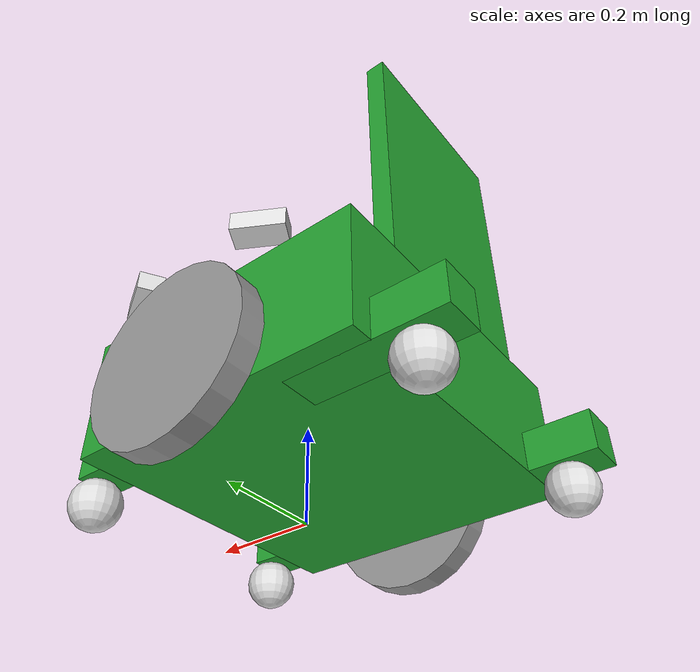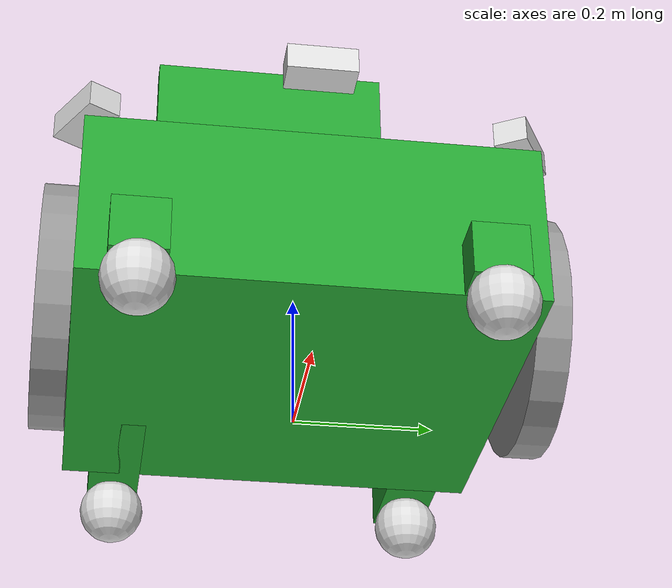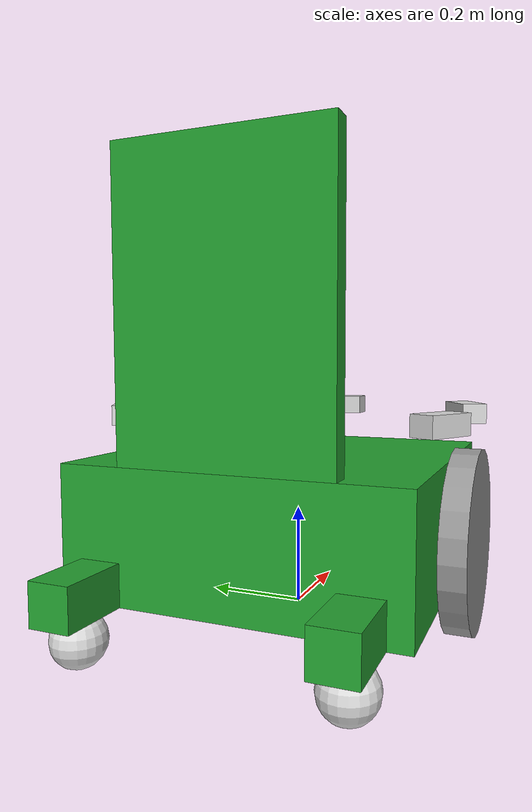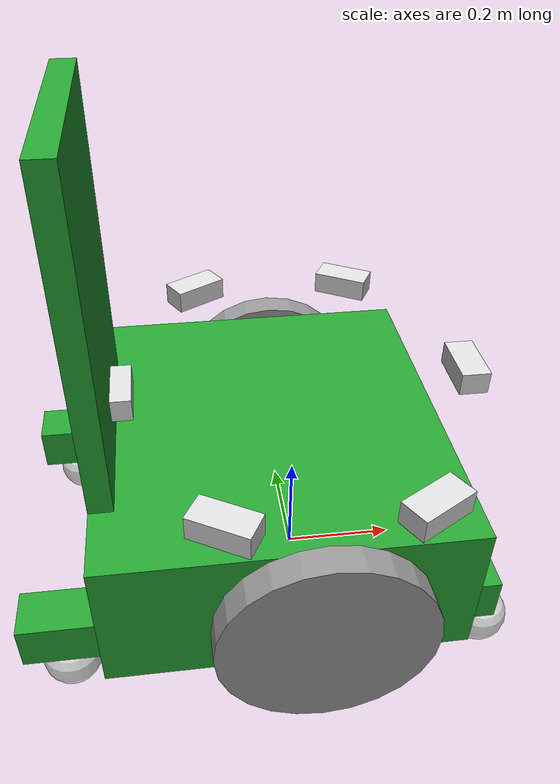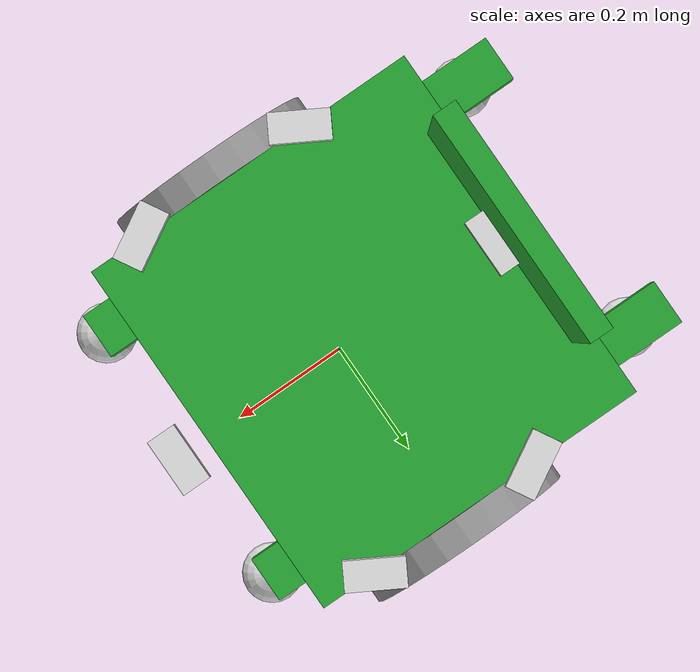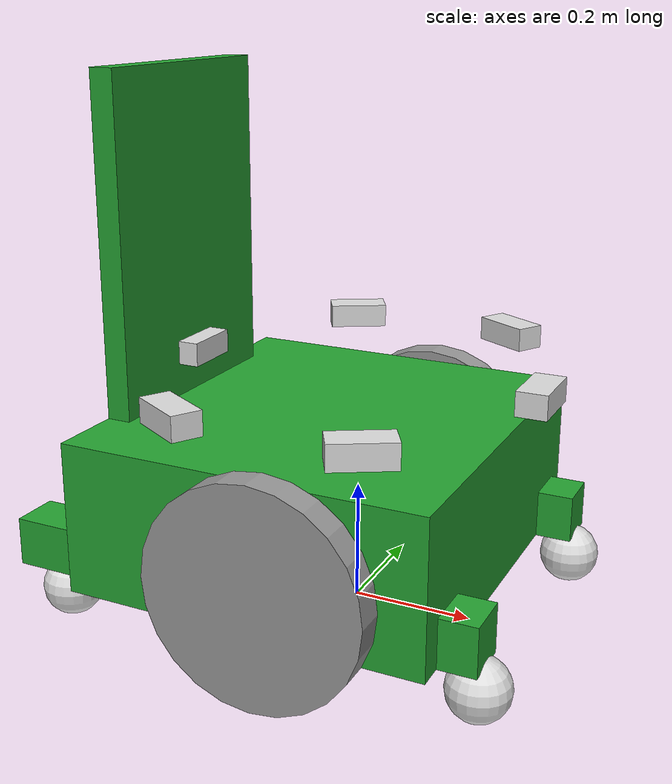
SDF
<sdf version='1.11'>
  <model name='wheelchair'>
    <link name='base_footprint'>
      <inertial>
        <pose>-0.047450231797109367 9.4612679355157225e-19 0.20492682483410599 0 0 0</pose>
        <mass>11.000999999999999</mass>
        <inertia>
          <ixx>0.60503136609399188</ixx>
          <ixy>-4.938781862339207e-19</ixy>
          <ixz>-0.0061798025634033221</ixz>
          <iyy>0.61988234509590023</iyy>
          <iyz>5.1280072210495333e-20</iyz>
          <izz>0.64935097900190875</izz>
        </inertia>
      </inertial>
      <collision name='base_footprint_fixed_joint_lump__base_link_collision'>
        <pose>-0.050000000000000003 0 0.20000000000000001 0 0 0</pose>
        <geometry>
          <box>
            <size>0.59999999999999998 0.64500000000000002 0.25</size>
          </box>
        </geometry>
        <surface>
          <contact>
            <ode/>
          </contact>
          <friction>
            <ode/>
          </friction>
        </surface>
      </collision>
      <collision name='base_footprint_fixed_joint_lump__camera_back_link_collision_1'>
        <pose>-0.29999999999999999 0 0.40000000000000002 0 0 3.1415899999999999</pose>
        <geometry>
          <box>
            <size>0.050000000000000003 0.10000000000000001 0.040000000000000001</size>
          </box>
        </geometry>
        <surface>
          <contact>
            <ode/>
          </contact>
          <friction>
            <ode/>
          </friction>
        </surface>
      </collision>
      <collision name='base_footprint_fixed_joint_lump__camera_back_left_link_collision_2'>
        <pose>-0.14999999999999999 0.32000000000000001 0.40000000000000002 0 0 2.0899999999999999</pose>
        <geometry>
          <box>
            <size>0.050000000000000003 0.10000000000000001 0.040000000000000001</size>
          </box>
        </geometry>
        <surface>
          <contact>
            <ode/>
          </contact>
          <friction>
            <ode/>
          </friction>
        </surface>
      </collision>
      <collision name='base_footprint_fixed_joint_lump__camera_back_right_link_collision_3'>
        <pose>-0.14999999999999999 -0.32000000000000001 0.40000000000000002 0 0 -2.0899999999999999</pose>
        <geometry>
          <box>
            <size>0.050000000000000003 0.10000000000000001 0.040000000000000001</size>
          </box>
        </geometry>
        <surface>
          <contact>
            <ode/>
          </contact>
          <friction>
            <ode/>
          </friction>
        </surface>
      </collision>
      <collision name='base_footprint_fixed_joint_lump__camera_front_link_collision_4'>
        <pose>0.29999999999999999 0 0.40000000000000002 0 0 0</pose>
        <geometry>
          <box>
            <size>0.050000000000000003 0.10000000000000001 0.040000000000000001</size>
          </box>
        </geometry>
        <surface>
          <contact>
            <ode/>
          </contact>
          <friction>
            <ode/>
          </friction>
        </surface>
      </collision>
      <collision name='base_footprint_fixed_joint_lump__camera_front_left_link_collision_5'>
        <pose>0.14999999999999999 0.32000000000000001 0.40000000000000002 0 0 1.0500000000000003</pose>
        <geometry>
          <box>
            <size>0.050000000000000003 0.10000000000000001 0.040000000000000001</size>
          </box>
        </geometry>
        <surface>
          <contact>
            <ode/>
          </contact>
          <friction>
            <ode/>
          </friction>
        </surface>
      </collision>
      <collision name='base_footprint_fixed_joint_lump__camera_front_right_link_collision_6'>
        <pose>0.14999999999999999 -0.32000000000000001 0.40000000000000002 0 0 -1.0500000000000003</pose>
        <geometry>
          <box>
            <size>0.050000000000000003 0.10000000000000001 0.040000000000000001</size>
          </box>
        </geometry>
        <surface>
          <contact>
            <ode/>
          </contact>
          <friction>
            <ode/>
          </friction>
        </surface>
      </collision>
      <collision name='base_footprint_fixed_joint_lump__left_front_caster_collision_7'>
        <pose>0.29999999999999999 0.23999999999999999 0.035999999999999997 0 0 0</pose>
        <geometry>
          <sphere>
            <radius>0.050000000000000003</radius>
          </sphere>
        </geometry>
      </collision>
      <collision name='base_footprint_fixed_joint_lump__left_rear_caster_collision_8'>
        <pose>-0.40999999999999998 0.23999999999999999 0.035999999999999997 0 0 0</pose>
        <geometry>
          <sphere>
            <radius>0.050000000000000003</radius>
          </sphere>
        </geometry>
      </collision>
      <collision name='base_footprint_fixed_joint_lump__right_front_caster_collision_9'>
        <pose>0.29999999999999999 -0.23999999999999999 0.035999999999999997 0 0 0</pose>
        <geometry>
          <sphere>
            <radius>0.050000000000000003</radius>
          </sphere>
        </geometry>
      </collision>
      <collision name='base_footprint_fixed_joint_lump__right_rear_caster_collision_10'>
        <pose>-0.40999999999999998 -0.23999999999999999 0.035999999999999997 0 0 0</pose>
        <geometry>
          <sphere>
            <radius>0.050000000000000003</radius>
          </sphere>
        </geometry>
      </collision>
      <visual name='base_footprint_fixed_joint_lump__base_link_visual'>
        <pose>-0.050000000000000003 0 0.20000000000000001 0 0 0</pose>
        <geometry>
          <box>
            <size>0.59999999999999998 0.64500000000000002 0.25</size>
          </box>
        </geometry>
        <material>
          <script>
            <name>Gazebo/Green</name>
            <uri>file://media/materials/scripts/gazebo.material</uri>
          </script>
          <diffuse>0 0.75000006 0 1</diffuse>
          <ambient>0 0.75000006 0 1</ambient>
        </material>
      </visual>
      <visual name='base_footprint_fixed_joint_lump__base_link_visual_1'>
        <pose>-0.33250000000000002 0.23999999999999999 0.115 0 0 0</pose>
        <geometry>
          <box>
            <size>0.29999999999999999 0.080000000000000002 0.080000000000000002</size>
          </box>
        </geometry>
        <material>
          <script>
            <name>Gazebo/Green</name>
            <uri>file://media/materials/scripts/gazebo.material</uri>
          </script>
          <diffuse>0 0.75000006 0 1</diffuse>
          <ambient>0 0.75000006 0 1</ambient>
        </material>
      </visual>
      <visual name='base_footprint_fixed_joint_lump__base_link_visual_2'>
        <pose>-0.33250000000000002 -0.23999999999999999 0.115 0 0 0</pose>
        <geometry>
          <box>
            <size>0.29999999999999999 0.080000000000000002 0.080000000000000002</size>
          </box>
        </geometry>
        <material>
          <script>
            <name>Gazebo/Green</name>
            <uri>file://media/materials/scripts/gazebo.material</uri>
          </script>
          <diffuse>0 0.75000006 0 1</diffuse>
          <ambient>0 0.75000006 0 1</ambient>
        </material>
      </visual>
      <visual name='base_footprint_fixed_joint_lump__base_link_visual_3'>
        <pose>0.28000000000000003 0.23999999999999999 0.115 0 0 0</pose>
        <geometry>
          <box>
            <size>0.059999999999999998 0.080000000000000002 0.080000000000000002</size>
          </box>
        </geometry>
        <material>
          <script>
            <name>Gazebo/Green</name>
            <uri>file://media/materials/scripts/gazebo.material</uri>
          </script>
          <diffuse>0 0.75000006 0 1</diffuse>
          <ambient>0 0.75000006 0 1</ambient>
        </material>
      </visual>
      <visual name='base_footprint_fixed_joint_lump__base_link_visual_4'>
        <pose>0.28000000000000003 -0.23999999999999999 0.115 0 0 0</pose>
        <geometry>
          <box>
            <size>0.059999999999999998 0.080000000000000002 0.080000000000000002</size>
          </box>
        </geometry>
        <material>
          <script>
            <name>Gazebo/Green</name>
            <uri>file://media/materials/scripts/gazebo.material</uri>
          </script>
          <diffuse>0 0.75000006 0 1</diffuse>
          <ambient>0 0.75000006 0 1</ambient>
        </material>
      </visual>
      <visual name='base_footprint_fixed_joint_lump__base_link_visual_5'>
        <pose>-0.33000000000000002 0 0.60000000000000009 0 0 0</pose>
        <geometry>
          <box>
            <size>0.040000000000000001 0.40000000000000002 0.55000000000000004</size>
          </box>
        </geometry>
        <material>
          <script>
            <name>Gazebo/Green</name>
            <uri>file://media/materials/scripts/gazebo.material</uri>
          </script>
          <diffuse>0 0.75000006 0 1</diffuse>
          <ambient>0 0.75000006 0 1</ambient>
        </material>
      </visual>
      <visual name='base_footprint_fixed_joint_lump__camera_back_link_visual_6'>
        <pose>-0.29999999999999999 0 0.40000000000000002 0 0 3.1415899999999999</pose>
        <geometry>
          <box>
            <size>0.050000000000000003 0.10000000000000001 0.040000000000000001</size>
          </box>
        </geometry>
        <material>
          <diffuse>0.875 0.875 0.875 1</diffuse>
          <ambient>0.875 0.875 0.875 1</ambient>
        </material>
      </visual>
      <visual name='base_footprint_fixed_joint_lump__camera_back_left_link_visual_7'>
        <pose>-0.14999999999999999 0.32000000000000001 0.40000000000000002 0 0 2.0899999999999999</pose>
        <geometry>
          <box>
            <size>0.050000000000000003 0.10000000000000001 0.040000000000000001</size>
          </box>
        </geometry>
        <material>
          <diffuse>0.875 0.875 0.875 1</diffuse>
          <ambient>0.875 0.875 0.875 1</ambient>
        </material>
      </visual>
      <visual name='base_footprint_fixed_joint_lump__camera_back_right_link_visual_8'>
        <pose>-0.14999999999999999 -0.32000000000000001 0.40000000000000002 0 0 -2.0899999999999999</pose>
        <geometry>
          <box>
            <size>0.050000000000000003 0.10000000000000001 0.040000000000000001</size>
          </box>
        </geometry>
        <material>
          <diffuse>0.875 0.875 0.875 1</diffuse>
          <ambient>0.875 0.875 0.875 1</ambient>
        </material>
      </visual>
      <visual name='base_footprint_fixed_joint_lump__camera_front_link_visual_9'>
        <pose>0.29999999999999999 0 0.40000000000000002 0 0 0</pose>
        <geometry>
          <box>
            <size>0.050000000000000003 0.10000000000000001 0.040000000000000001</size>
          </box>
        </geometry>
        <material>
          <diffuse>0.875 0.875 0.875 1</diffuse>
          <ambient>0.875 0.875 0.875 1</ambient>
        </material>
      </visual>
      <visual name='base_footprint_fixed_joint_lump__camera_front_left_link_visual_10'>
        <pose>0.14999999999999999 0.32000000000000001 0.40000000000000002 0 0 1.0500000000000003</pose>
        <geometry>
          <box>
            <size>0.050000000000000003 0.10000000000000001 0.040000000000000001</size>
          </box>
        </geometry>
        <material>
          <diffuse>0.875 0.875 0.875 1</diffuse>
          <ambient>0.875 0.875 0.875 1</ambient>
        </material>
      </visual>
      <visual name='base_footprint_fixed_joint_lump__camera_front_right_link_visual_11'>
        <pose>0.14999999999999999 -0.32000000000000001 0.40000000000000002 0 0 -1.0500000000000003</pose>
        <geometry>
          <box>
            <size>0.050000000000000003 0.10000000000000001 0.040000000000000001</size>
          </box>
        </geometry>
        <material>
          <diffuse>0.875 0.875 0.875 1</diffuse>
          <ambient>0.875 0.875 0.875 1</ambient>
        </material>
      </visual>
      <visual name='base_footprint_fixed_joint_lump__left_front_caster_visual_12'>
        <pose>0.29999999999999999 0.23999999999999999 0.035999999999999997 0 0 0</pose>
        <geometry>
          <sphere>
            <radius>0.050000000000000003</radius>
          </sphere>
        </geometry>
        <material>
          <diffuse>0.875 0.875 0.875 1</diffuse>
          <ambient>0.875 0.875 0.875 1</ambient>
        </material>
      </visual>
      <visual name='base_footprint_fixed_joint_lump__left_rear_caster_visual_13'>
        <pose>-0.40999999999999998 0.23999999999999999 0.035999999999999997 0 0 0</pose>
        <geometry>
          <sphere>
            <radius>0.050000000000000003</radius>
          </sphere>
        </geometry>
        <material>
          <diffuse>0.875 0.875 0.875 1</diffuse>
          <ambient>0.875 0.875 0.875 1</ambient>
        </material>
      </visual>
      <visual name='base_footprint_fixed_joint_lump__right_front_caster_visual_14'>
        <pose>0.29999999999999999 -0.23999999999999999 0.035999999999999997 0 0 0</pose>
        <geometry>
          <sphere>
            <radius>0.050000000000000003</radius>
          </sphere>
        </geometry>
        <material>
          <diffuse>0.875 0.875 0.875 1</diffuse>
          <ambient>0.875 0.875 0.875 1</ambient>
        </material>
      </visual>
      <visual name='base_footprint_fixed_joint_lump__right_rear_caster_visual_15'>
        <pose>-0.40999999999999998 -0.23999999999999999 0.035999999999999997 0 0 0</pose>
        <geometry>
          <sphere>
            <radius>0.050000000000000003</radius>
          </sphere>
        </geometry>
        <material>
          <diffuse>0.875 0.875 0.875 1</diffuse>
          <ambient>0.875 0.875 0.875 1</ambient>
        </material>
      </visual>
      <sensor name='depth_camera_back' type='depth_camera'>
        <topic>depth_camera_back/image</topic>
        <update_rate>15</update_rate>
        <camera>
          <image>
            <width>640</width>
            <height>480</height>
            <format>R_FLOAT32</format>
          </image>
          <clip>
            <near>0.29999999999999999</near>
            <far>10</far>
          </clip>
          <horizontal_fov>1.0469999999999999</horizontal_fov>
        </camera>
        <always_on>true</always_on>
        <visualize>true</visualize>
        <pose>-0.29999999999999999 0 0.40000000000000002 0 0 3.1415899999999999</pose>
        <camera_info_topic>depth_camera_back/camera_info</camera_info_topic>
      </sensor>
      <sensor name='depth_camera_back_left' type='depth_camera'>
        <topic>depth_camera_back_left/image</topic>
        <update_rate>15</update_rate>
        <camera>
          <image>
            <width>640</width>
            <height>480</height>
            <format>R_FLOAT32</format>
          </image>
          <clip>
            <near>0.29999999999999999</near>
            <far>10</far>
          </clip>
          <horizontal_fov>1.0469999999999999</horizontal_fov>
        </camera>
        <always_on>true</always_on>
        <visualize>true</visualize>
        <pose>-0.14999999999999999 0.32000000000000001 0.40000000000000002 0 0 2.0899999999999999</pose>
        <camera_info_topic>depth_camera_back_left/camera_info</camera_info_topic>
      </sensor>
      <sensor name='depth_camera_back_right' type='depth_camera'>
        <topic>depth_camera_back_right/image</topic>
        <update_rate>15</update_rate>
        <camera>
          <image>
            <width>640</width>
            <height>480</height>
            <format>R_FLOAT32</format>
          </image>
          <clip>
            <near>0.29999999999999999</near>
            <far>10</far>
          </clip>
          <horizontal_fov>1.0469999999999999</horizontal_fov>
        </camera>
        <always_on>true</always_on>
        <visualize>true</visualize>
        <pose>-0.14999999999999999 -0.32000000000000001 0.40000000000000002 0 0 -2.0899999999999999</pose>
        <camera_info_topic>depth_camera_back_right/camera_info</camera_info_topic>
      </sensor>
      <sensor name='depth_camera_front' type='depth_camera'>
        <topic>depth_camera_front/image</topic>
        <update_rate>15</update_rate>
        <camera>
          <image>
            <width>640</width>
            <height>480</height>
            <format>R_FLOAT32</format>
          </image>
          <clip>
            <near>0.29999999999999999</near>
            <far>10</far>
          </clip>
          <horizontal_fov>1.0469999999999999</horizontal_fov>
        </camera>
        <always_on>true</always_on>
        <visualize>true</visualize>
        <pose>0.29999999999999999 0 0.40000000000000002 0 0 0</pose>
        <camera_info_topic>depth_camera_front/camera_info</camera_info_topic>
      </sensor>
      <sensor name='depth_camera_front_left' type='depth_camera'>
        <topic>depth_camera_front_left/image</topic>
        <update_rate>15</update_rate>
        <camera>
          <image>
            <width>640</width>
            <height>480</height>
            <format>R_FLOAT32</format>
          </image>
          <clip>
            <near>0.29999999999999999</near>
            <far>10</far>
          </clip>
          <horizontal_fov>1.0469999999999999</horizontal_fov>
        </camera>
        <always_on>true</always_on>
        <visualize>true</visualize>
        <pose>0.14999999999999999 0.32000000000000001 0.40000000000000002 0 0 1.0500000000000003</pose>
        <camera_info_topic>depth_camera_front_left/camera_info</camera_info_topic>
      </sensor>
      <sensor name='depth_camera_front_right' type='depth_camera'>
        <topic>depth_camera_front_right/image</topic>
        <update_rate>15</update_rate>
        <camera>
          <image>
            <width>640</width>
            <height>480</height>
            <format>R_FLOAT32</format>
          </image>
          <clip>
            <near>0.29999999999999999</near>
            <far>10</far>
          </clip>
          <horizontal_fov>1.0469999999999999</horizontal_fov>
        </camera>
        <always_on>true</always_on>
        <visualize>true</visualize>
        <pose>0.14999999999999999 -0.32000000000000001 0.40000000000000002 0 0 -1.0500000000000003</pose>
        <camera_info_topic>depth_camera_front_right/camera_info</camera_info_topic>
      </sensor>
    </link>
    <joint name='base_left_wheel_joint' type='revolute'>
      <pose relative_to='base_footprint'>0 0.34749999999999998 0.16400000000000001 0 0 0</pose>
      <parent>base_footprint</parent>
      <child>left_wheel</child>
      <axis>
        <xyz>0 1 0</xyz>
        <limit>
          <lower>-inf</lower>
          <upper>inf</upper>
        </limit>
        <dynamics>
          <spring_reference>0</spring_reference>
          <spring_stiffness>0</spring_stiffness>
        </dynamics>
      </axis>
    </joint>
    <link name='left_wheel'>
      <pose relative_to='base_left_wheel_joint'>0 0 0 0 0 0</pose>
      <inertial>
        <pose>0 0 0 0 0 0</pose>
        <mass>0.5</mass>
        <inertia>
          <ixx>0.001</ixx>
          <ixy>0</ixy>
          <ixz>0</ixz>
          <iyy>0.001</iyy>
          <iyz>0</iyz>
          <izz>0.001</izz>
        </inertia>
      </inertial>
      <collision name='left_wheel_collision'>
        <pose>0 0 0 1.5708 0 0</pose>
        <geometry>
          <cylinder>
            <length>0.050000000000000003</length>
            <radius>0.17799999999999999</radius>
          </cylinder>
        </geometry>
        <surface>
          <contact>
            <ode/>
          </contact>
          <friction>
            <ode>
              <mu>1</mu>
              <mu2>1</mu2>
            </ode>
          </friction>
        </surface>
      </collision>
      <visual name='left_wheel_visual'>
        <pose>0 0 0 1.5708 0 0</pose>
        <geometry>
          <cylinder>
            <length>0.050000000000000003</length>
            <radius>0.17799999999999999</radius>
          </cylinder>
        </geometry>
        <material>
          <script>
            <name>Gazebo/Grey</name>
            <uri>file://media/materials/scripts/gazebo.material</uri>
          </script>
          <diffuse>0.875 0.875 0.875 1</diffuse>
          <ambient>0.875 0.875 0.875 1</ambient>
        </material>
      </visual>
    </link>
    <joint name='base_right_wheel_joint' type='revolute'>
      <pose relative_to='base_footprint'>0 -0.34749999999999998 0.16400000000000001 0 0 0</pose>
      <parent>base_footprint</parent>
      <child>right_wheel</child>
      <axis>
        <xyz>0 1 0</xyz>
        <limit>
          <lower>-inf</lower>
          <upper>inf</upper>
        </limit>
        <dynamics>
          <spring_reference>0</spring_reference>
          <spring_stiffness>0</spring_stiffness>
        </dynamics>
      </axis>
    </joint>
    <link name='right_wheel'>
      <pose relative_to='base_right_wheel_joint'>0 0 0 0 0 0</pose>
      <inertial>
        <pose>0 0 0 0 0 0</pose>
        <mass>0.5</mass>
        <inertia>
          <ixx>0.001</ixx>
          <ixy>0</ixy>
          <ixz>0</ixz>
          <iyy>0.001</iyy>
          <iyz>0</iyz>
          <izz>0.001</izz>
        </inertia>
      </inertial>
      <collision name='right_wheel_collision'>
        <pose>0 0 0 1.5708 0 0</pose>
        <geometry>
          <cylinder>
            <length>0.050000000000000003</length>
            <radius>0.17799999999999999</radius>
          </cylinder>
        </geometry>
        <surface>
          <contact>
            <ode/>
          </contact>
          <friction>
            <ode>
              <mu>1</mu>
              <mu2>1</mu2>
            </ode>
          </friction>
        </surface>
      </collision>
      <visual name='right_wheel_visual'>
        <pose>0 0 0 1.5708 0 0</pose>
        <geometry>
          <cylinder>
            <length>0.050000000000000003</length>
            <radius>0.17799999999999999</radius>
          </cylinder>
        </geometry>
        <material>
          <script>
            <name>Gazebo/Grey</name>
            <uri>file://media/materials/scripts/gazebo.material</uri>
          </script>
          <diffuse>0.875 0.875 0.875 1</diffuse>
          <ambient>0.875 0.875 0.875 1</ambient>
        </material>
      </visual>
    </link>
    <plugin name='gz::sim::systems::DiffDrive' filename='gz-sim-diff-drive-system'>
      <left_joint>base_left_wheel_joint</left_joint>
      <right_joint>base_right_wheel_joint</right_joint>
      <wheel_separation>0.695</wheel_separation>
      <wheel_radius>0.178</wheel_radius>
      <odom_publish_frequency>50</odom_publish_frequency>
      <topic>cmd_vel</topic>
      <odom_topic>odom</odom_topic>
      <frame_id>odom</frame_id>
      <child_frame_id>base_footprint</child_frame_id>
    </plugin>
    <plugin name='gz::sim::systems::JointStatePublisher' filename='gz-sim-joint-state-publisher-system'/>
    <frame name='camera_back_joint' attached_to='base_link'>
      <pose>-0.29999999999999999 0 0.20000000000000001 0 0 3.1415899999999999</pose>
    </frame>
    <frame name='camera_back_link' attached_to='camera_back_joint'>
      <pose>0 0 0 0 0 0</pose>
    </frame>
    <frame name='camera_back_left_joint' attached_to='base_link'>
      <pose>-0.14999999999999999 0.32000000000000001 0.20000000000000001 0 0 2.0899999999999999</pose>
    </frame>
    <frame name='camera_back_left_link' attached_to='camera_back_left_joint'>
      <pose>0 0 0 0 0 0</pose>
    </frame>
    <frame name='camera_back_right_joint' attached_to='base_link'>
      <pose>-0.14999999999999999 -0.32000000000000001 0.20000000000000001 0 0 -2.0899999999999999</pose>
    </frame>
    <frame name='camera_back_right_link' attached_to='camera_back_right_joint'>
      <pose>0 0 0 0 0 0</pose>
    </frame>
    <frame name='camera_front_joint' attached_to='base_link'>
      <pose>0.29999999999999999 0 0.20000000000000001 0 0 0</pose>
    </frame>
    <frame name='camera_front_link' attached_to='camera_front_joint'>
      <pose>0 0 0 0 0 0</pose>
    </frame>
    <frame name='camera_front_left_joint' attached_to='base_link'>
      <pose>0.14999999999999999 0.32000000000000001 0.20000000000000001 0 0 1.0500000000000003</pose>
    </frame>
    <frame name='camera_front_left_link' attached_to='camera_front_left_joint'>
      <pose>0 0 0 0 0 0</pose>
    </frame>
    <frame name='camera_front_right_joint' attached_to='base_link'>
      <pose>0.14999999999999999 -0.32000000000000001 0.20000000000000001 0 0 -1.0500000000000003</pose>
    </frame>
    <frame name='camera_front_right_link' attached_to='camera_front_right_joint'>
      <pose>0 0 0 0 0 0</pose>
    </frame>
    <frame name='left_front_caster_joint' attached_to='base_link'>
      <pose>0.29999999999999999 0.23999999999999999 -0.16400000000000001 0 0 0</pose>
    </frame>
    <frame name='left_front_caster' attached_to='left_front_caster_joint'>
      <pose>0 0 0 0 0 0</pose>
    </frame>
    <frame name='left_rear_caster_joint' attached_to='base_link'>
      <pose>-0.40999999999999998 0.23999999999999999 -0.16400000000000001 0 0 0</pose>
    </frame>
    <frame name='left_rear_caster' attached_to='left_rear_caster_joint'>
      <pose>0 0 0 0 0 0</pose>
    </frame>
    <frame name='right_front_caster_joint' attached_to='base_link'>
      <pose>0.29999999999999999 -0.23999999999999999 -0.16400000000000001 0 0 0</pose>
    </frame>
    <frame name='right_front_caster' attached_to='right_front_caster_joint'>
      <pose>0 0 0 0 0 0</pose>
    </frame>
    <frame name='right_rear_caster_joint' attached_to='base_link'>
      <pose>-0.40999999999999998 -0.23999999999999999 -0.16400000000000001 0 0 0</pose>
    </frame>
    <frame name='right_rear_caster' attached_to='right_rear_caster_joint'>
      <pose>0 0 0 0 0 0</pose>
    </frame>
    <frame name='base_joint' attached_to='base_footprint'>
      <pose>0 0 0.20000000000000001 0 0 0</pose>
    </frame>
    <frame name='base_link' attached_to='base_joint'>
      <pose>0 0 0 0 0 0</pose>
    </frame>
  </model>
</sdf>
